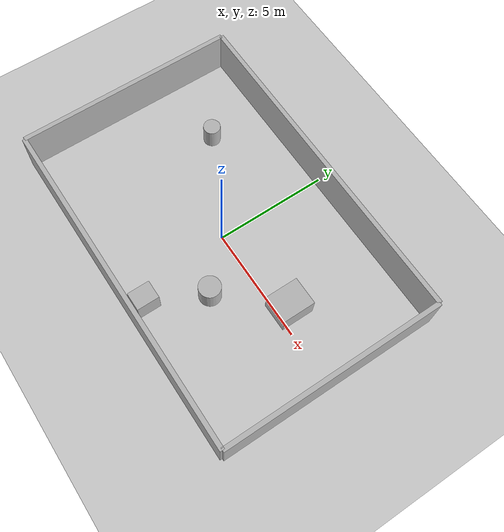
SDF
<?xml version="1.0"?>
<sdf version="1.6">
  <world name="env_17">

    <include><uri>model://ground_plane</uri></include>
    <include><uri>model://sun</uri></include>

    <!-- WALLS -->
    <model name="wall_north"><static>true</static><pose>0 4.856485799925453 1 0 0 0</pose>
      <link name="link"><collision name="collision">
        <geometry><box><size>14.878520233427507 0.2 2</size></box></geometry>
      </collision><visual name="visual">
        <geometry><box><size>14.878520233427507 0.2 2</size></box></geometry>
      </visual></link>
    </model>

    <model name="wall_south"><static>true</static><pose>0 -4.856485799925453 1 0 0 0</pose>
      <link name="link"><collision name="collision">
        <geometry><box><size>14.878520233427507 0.2 2</size></box></geometry>
      </collision><visual name="visual">
        <geometry><box><size>14.878520233427507 0.2 2</size></box></geometry>
      </visual></link>
    </model>

    <model name="wall_east"><static>true</static><pose>7.439260116713753 0 1 0 0 1.57</pose>
      <link name="link"><collision name="collision">
        <geometry><box><size>9.712971599850906 0.2 2</size></box></geometry>
      </collision><visual name="visual">
        <geometry><box><size>9.712971599850906 0.2 2</size></box></geometry>
      </visual></link>
    </model>

    <model name="wall_west"><static>true</static><pose>-7.439260116713753 0 1 0 0 1.57</pose>
      <link name="link"><collision name="collision">
        <geometry><box><size>9.712971599850906 0.2 2</size></box></geometry>
      </collision><visual name="visual">
        <geometry><box><size>9.712971599850906 0.2 2</size></box></geometry>
      </visual></link>
    </model>

    <!-- SENSOR -->

    <model name="lidar_sensor">
      <static>true</static>
      <pose>-5.238500697785922 2.8552298846282724 0.4 0 0 0</pose>
      <link name="link">
        <sensor name="lidar" type="ray">
          <pose>0 0 0 0 0 0</pose>
          <visualize>true</visualize>
          <always_on>true</always_on>
          <update_rate>10</update_rate>
          <ray>
            <scan><horizontal>
              <samples>120</samples>
              <resolution>1</resolution>
              <min_angle>-3.14159</min_angle>
              <max_angle>3.14159</max_angle>
            </horizontal></scan>
            <range><min>0.15</min><max>20.0</max><resolution>0.01</resolution></range>
          </ray>
          <plugin name="lidar_plugin" filename="liblidar_plugin.so"/>
        </sensor>
      </link>
    </model>

    <!-- OBSTACLES -->

    <model name="obstacle_0">
      <static>true</static>
      <pose>-4.256219784726819 2.2846269854057066 0.5 0 0 0</pose>
      <link name="link">
        <collision name="collision">
          <geometry><cylinder><radius>0.37</radius><length>1.0</length></cylinder></geometry>
        </collision>
        <visual name="visual">
          <geometry><cylinder><radius>0.37</radius><length>1.0</length></cylinder></geometry>
        </visual>
      </link>
    </model>

    <model name="obstacle_1">
      <static>true</static>
      <pose>4.041907462771216 0.5328943874926919 0.5 0 0 0</pose>
      <link name="link">
        <collision name="collision">
          <geometry><box><size>1.22 1.43 1.0</size></box></geometry>
        </collision>
        <visual name="visual">
          <geometry><box><size>1.22 1.43 1.0</size></box></geometry>
        </visual>
      </link>
    </model>

    <model name="obstacle_2">
      <static>true</static>
      <pose>1.8688392478655276 -1.7865830823076112 0.5 0 0 0</pose>
      <link name="link">
        <collision name="collision">
          <geometry><cylinder><radius>0.47</radius><length>1.0</length></cylinder></geometry>
        </collision>
        <visual name="visual">
          <geometry><cylinder><radius>0.47</radius><length>1.0</length></cylinder></geometry>
        </visual>
      </link>
    </model>

    <model name="obstacle_3">
      <static>true</static>
      <pose>0.7546976093319451 -4.145025643436264 0.5 0 0 0</pose>
      <link name="link">
        <collision name="collision">
          <geometry><box><size>0.8 0.98 1.0</size></box></geometry>
        </collision>
        <visual name="visual">
          <geometry><box><size>0.8 0.98 1.0</size></box></geometry>
        </visual>
      </link>
    </model>

  </world>
</sdf>
